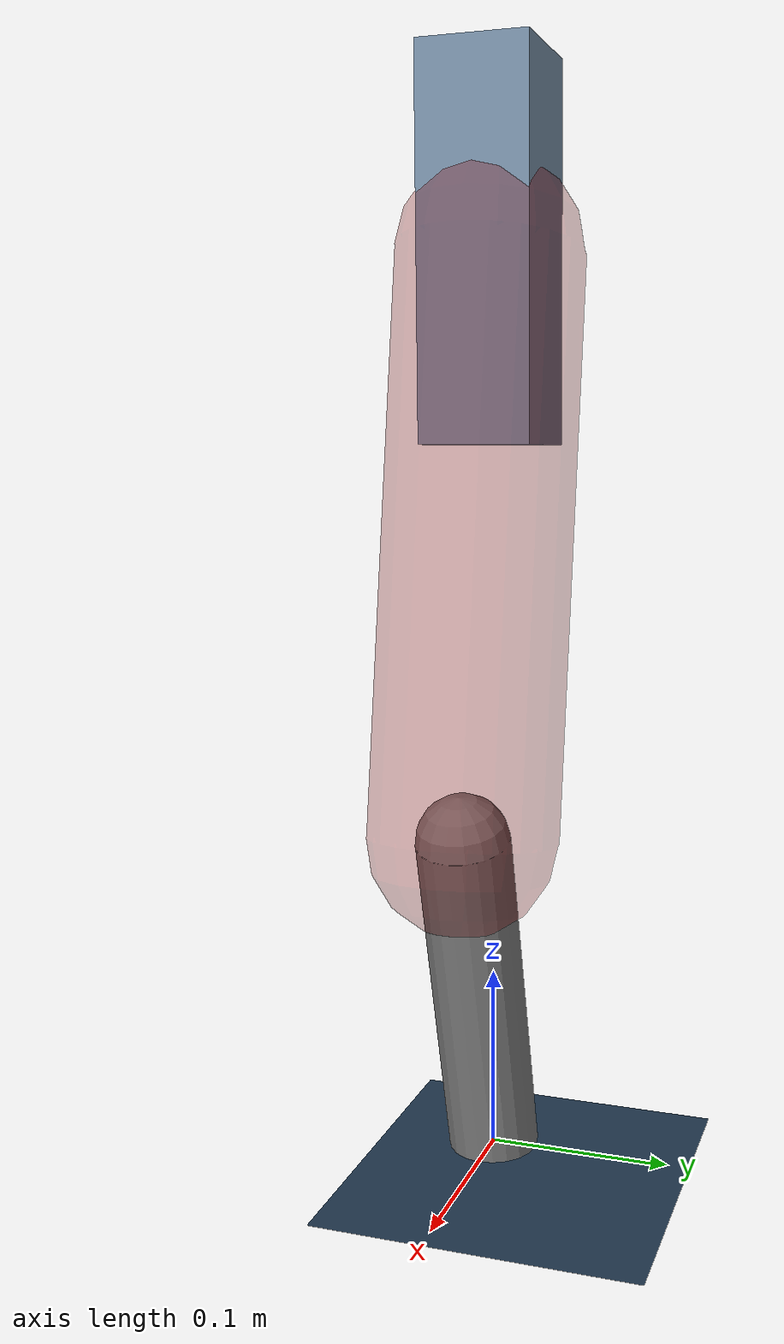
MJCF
<mujoco model="Hopper2D">
	<compiler inertiafromgeom="true" angle="radian" />
	<option timestep="0.001" integrator="implicit" cone="elliptic" solver="Newton" tolerance="1e-10" />

	<default>
		<geom contype="1" conaffinity="1" condim="3" friction="2 0.005 0.0001" solref="0.005 1" />
		<joint limited="true" damping="0.1" />
	</default>

	<asset>
		<texture name="skybox" type="skybox" builtin="gradient" rgb1=".4 .6 .8" rgb2="0 0 0" width="800" height="800" />
		<texture name="grid" type="2d" builtin="checker" rgb1=".1 .2 .3" rgb2=".2 .3 .4" width="300" height="300" mark="edge" markrgb=".2 .3 .4" />
		<material name="ground" texture="grid" texrepeat="1 1" texuniform="true" reflectance="0.1" />
		<material name="leg" rgba="0.5 0.6 0.7 1" />
	</asset>

	<worldbody>

		<geom name="floor" type="plane" size="5 5 0.25" material="ground" />

		<light directional="false" diffuse="0.8 0.8 0.8" specular="0.3 0.3 0.3" pos="0 0 2" dir="0 0 -1" />
		<light mode="targetbodycom" target="base" directional="false" diffuse="0.8 0.8 0.8" specular="0.3 0.3 0.3" pos="0 0 2" dir="0 0 -1" />

		<camera name="fixed" pos="0 -2 1" xyaxes="1 0 0 0 0 1" />
		<camera name="tracking" mode="trackcom" pos="0 -3 1" />

		<body name="root" pos="0 0 0.4918450999994579">
			<joint name="slide_x" type="slide" axis="1 0 0" range="-100 100" />
			<joint name="slide_z" type="slide" axis="0 0 1" range="0 10" />

			<body name="base" pos="0 0 0">
				<geom name="torso" type="box" size="0.03 0.03 0.1" mass="2.307" material="leg" />

				<body name="link1" pos="0 0 0" euler="0 1.4121827912964826 0">
					<joint type="hinge" axis="0 -1 0" pos="0 0 0" name="hinge1" limited="true" range="-3.14 3.14" stiffness="0" damping="0.1" />
					<geom name="thigh" type="capsule" fromto="0 0 0 0.30718711248764086 0 0" size="0.05" rgba="0.5 0 0 0.3" mass="1.0082052037166302" />

					<body name="link2" pos="0.30718711248764086 0 0" euler="0 0.41052715132566353 0">
						<joint type="hinge" axis="0 -1 0" pos="0 0 0" name="hinge2" limited="true" range="-3.14 3.14" stiffness="0" damping="0.1" />
						<geom name="shank" type="capsule" fromto="0 0 0 0.19465798751181712 0 0" size="0.025" mass="0.3963921887606354" />

					</body>
				</body>
			</body>
		</body>
	</worldbody>

	<actuator>
		<motor name="torque1" joint="hinge1" ctrlrange="-78.33063930195341 78.33063930195341" ctrllimited="true" gear="1" />
		<motor name="torque2" joint="hinge2" ctrlrange="-85.56746496584283 85.56746496584283" ctrllimited="true" gear="1" />
	</actuator>
</mujoco>
